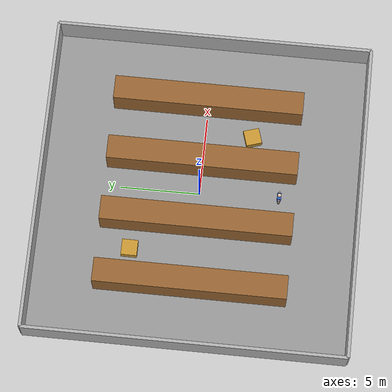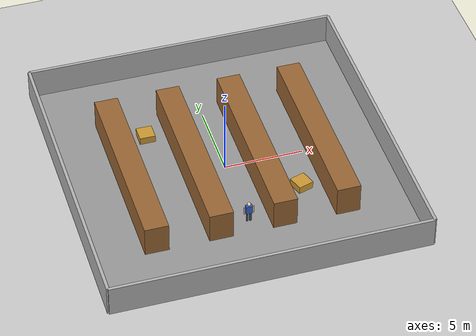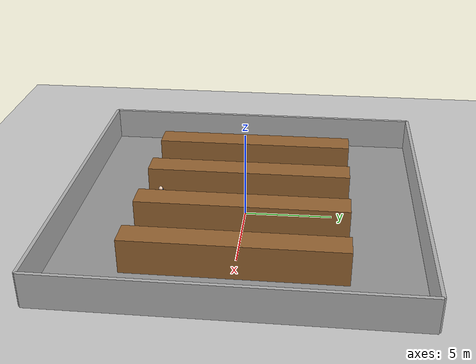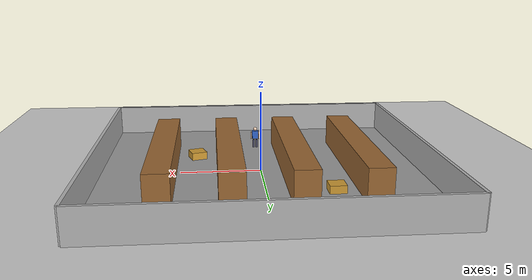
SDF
<?xml version="1.0" ?>
<sdf version="1.6">
  <world name="warehouse">
    <physics type="ode">
      <max_step_size>0.001</max_step_size>
      <real_time_factor>1</real_time_factor>
      <real_time_update_rate>1000</real_time_update_rate>
    </physics>

    <include><uri>model://sun</uri></include>
    <include><uri>model://ground_plane</uri></include>

    <!-- Warehouse Floor -->
    <model name="warehouse_floor">
      <static>true</static>
      <pose>0 0 0.01 0 0 0</pose>
      <link name="floor_link">
        <collision name="collision">
          <geometry><box><size>20 20 0.02</size></box></geometry>
        </collision>
        <visual name="visual">
          <geometry><box><size>20 20 0.02</size></box></geometry>
          <material><ambient>0.5 0.5 0.5 1</ambient><diffuse>0.6 0.6 0.6 1</diffuse></material>
        </visual>
      </link>
    </model>

    <!-- Walls -->
    <model name="wall_north">
      <static>true</static>
      <pose>0 10 1 0 0 0</pose>
      <link name="link">
        <collision name="collision"><geometry><box><size>20 0.2 2</size></box></geometry></collision>
        <visual name="visual"><geometry><box><size>20 0.2 2</size></box></geometry><material><ambient>0.7 0.7 0.7 1</ambient></material></visual>
      </link>
    </model>
    <model name="wall_south">
      <static>true</static>
      <pose>0 -10 1 0 0 0</pose>
      <link name="link">
        <collision name="collision"><geometry><box><size>20 0.2 2</size></box></geometry></collision>
        <visual name="visual"><geometry><box><size>20 0.2 2</size></box></geometry><material><ambient>0.7 0.7 0.7 1</ambient></material></visual>
      </link>
    </model>
    <model name="wall_east">
      <static>true</static>
      <pose>10 0 1 0 0 1.5708</pose>
      <link name="link">
        <collision name="collision"><geometry><box><size>20 0.2 2</size></box></geometry></collision>
        <visual name="visual"><geometry><box><size>20 0.2 2</size></box></geometry><material><ambient>0.7 0.7 0.7 1</ambient></material></visual>
      </link>
    </model>
    <model name="wall_west">
      <static>true</static>
      <pose>-10 0 1 0 0 1.5708</pose>
      <link name="link">
        <collision name="collision"><geometry><box><size>20 0.2 2</size></box></geometry></collision>
        <visual name="visual"><geometry><box><size>20 0.2 2</size></box></geometry><material><ambient>0.7 0.7 0.7 1</ambient></material></visual>
      </link>
    </model>

    <!-- Shelves -->
    <model name="shelf_1"><static>true</static><pose>-6 0 1 0 0 0</pose><link name="link"><collision name="c"><geometry><box><size>1.5 12 2</size></box></geometry></collision><visual name="v"><geometry><box><size>1.5 12 2</size></box></geometry><material><ambient>0.6 0.4 0.2 1</ambient></material></visual></link></model>
    <model name="shelf_2"><static>true</static><pose>-2 0 1 0 0 0</pose><link name="link"><collision name="c"><geometry><box><size>1.5 12 2</size></box></geometry></collision><visual name="v"><geometry><box><size>1.5 12 2</size></box></geometry><material><ambient>0.6 0.4 0.2 1</ambient></material></visual></link></model>
    <model name="shelf_3"><static>true</static><pose>2 0 1 0 0 0</pose><link name="link"><collision name="c"><geometry><box><size>1.5 12 2</size></box></geometry></collision><visual name="v"><geometry><box><size>1.5 12 2</size></box></geometry><material><ambient>0.6 0.4 0.2 1</ambient></material></visual></link></model>
    <model name="shelf_4"><static>true</static><pose>6 0 1 0 0 0</pose><link name="link"><collision name="c"><geometry><box><size>1.5 12 2</size></box></geometry></collision><visual name="v"><geometry><box><size>1.5 12 2</size></box></geometry><material><ambient>0.6 0.4 0.2 1</ambient></material></visual></link></model>

    <!-- Pallets -->
    <model name="pallet_1"><static>true</static><pose>-4 4 0.25 0 0 0</pose><link name="link"><collision name="c"><geometry><box><size>1 1 0.5</size></box></geometry></collision><visual name="v"><geometry><box><size>1 1 0.5</size></box></geometry><material><ambient>0.8 0.6 0.2 1</ambient></material></visual></link></model>
    <model name="pallet_2"><static>true</static><pose>4 -3 0.25 0 0 0.3</pose><link name="link"><collision name="c"><geometry><box><size>1 1 0.5</size></box></geometry></collision><visual name="v"><geometry><box><size>1 1 0.5</size></box></geometry><material><ambient>0.8 0.6 0.2 1</ambient></material></visual></link></model>

    <!-- Static Human Model (Person to Follow) -->
    <model name="human">
      <static>false</static>
      <pose>0 -5 0 0 0 0</pose>
      <link name="body">
        <pose>0 0 0.9 0 0 0</pose>
        <inertial>
          <mass>70</mass>
          <inertia>
            <ixx>10</ixx><ixy>0</ixy><ixz>0</ixz>
            <iyy>10</iyy><iyz>0</iyz><izz>5</izz>
          </inertia>
        </inertial>
        <collision name="collision">
          <geometry><cylinder><radius>0.3</radius><length>1.7</length></cylinder></geometry>
        </collision>
        <!-- Torso -->
        <visual name="torso">
          <pose>0 0 0.1 0 0 0</pose>
          <geometry><box><size>0.4 0.25 0.55</size></box></geometry>
          <material><ambient>0.1 0.3 0.7 1</ambient><diffuse>0.2 0.4 0.8 1</diffuse></material>
        </visual>
        <!-- Head -->
        <visual name="head">
          <pose>0 0 0.5 0 0 0</pose>
          <geometry><sphere><radius>0.12</radius></sphere></geometry>
          <material><ambient>0.9 0.75 0.65 1</ambient><diffuse>1.0 0.85 0.75 1</diffuse></material>
        </visual>
        <!-- Left Arm -->
        <visual name="left_arm">
          <pose>0.28 0 0.05 0 0 0</pose>
          <geometry><cylinder><radius>0.05</radius><length>0.5</length></cylinder></geometry>
          <material><ambient>0.9 0.75 0.65 1</ambient></material>
        </visual>
        <!-- Right Arm -->
        <visual name="right_arm">
          <pose>-0.28 0 0.05 0 0 0</pose>
          <geometry><cylinder><radius>0.05</radius><length>0.5</length></cylinder></geometry>
          <material><ambient>0.9 0.75 0.65 1</ambient></material>
        </visual>
        <!-- Legs -->
        <visual name="left_leg">
          <pose>0.1 0 -0.55 0 0 0</pose>
          <geometry><cylinder><radius>0.07</radius><length>0.55</length></cylinder></geometry>
          <material><ambient>0.2 0.2 0.3 1</ambient><diffuse>0.3 0.3 0.4 1</diffuse></material>
        </visual>
        <visual name="right_leg">
          <pose>-0.1 0 -0.55 0 0 0</pose>
          <geometry><cylinder><radius>0.07</radius><length>0.55</length></cylinder></geometry>
          <material><ambient>0.2 0.2 0.3 1</ambient><diffuse>0.3 0.3 0.4 1</diffuse></material>
        </visual>
      </link>
      <!-- Plugin for keyboard teleoperation of human (optional) -->
      <plugin name="human_movement" filename="libgazebo_ros_planar_move.so">
        <ros>
          <namespace>/human</namespace>
          <remapping>cmd_vel:=cmd_vel</remapping>
          <remapping>odom:=odom</remapping>
        </ros>
        <update_rate>100</update_rate>
        <publish_rate>10</publish_rate>
        <publish_odom>true</publish_odom>
        <publish_odom_tf>true</publish_odom_tf>
        <odometry_frame>odom</odometry_frame>
        <robot_base_frame>body</robot_base_frame>
      </plugin>
    </model>

    <gui>
      <camera name="user_camera">
        <pose>-12 -8 10 0 0.6 0.4</pose>
      </camera>
    </gui>
  </world>
</sdf>
